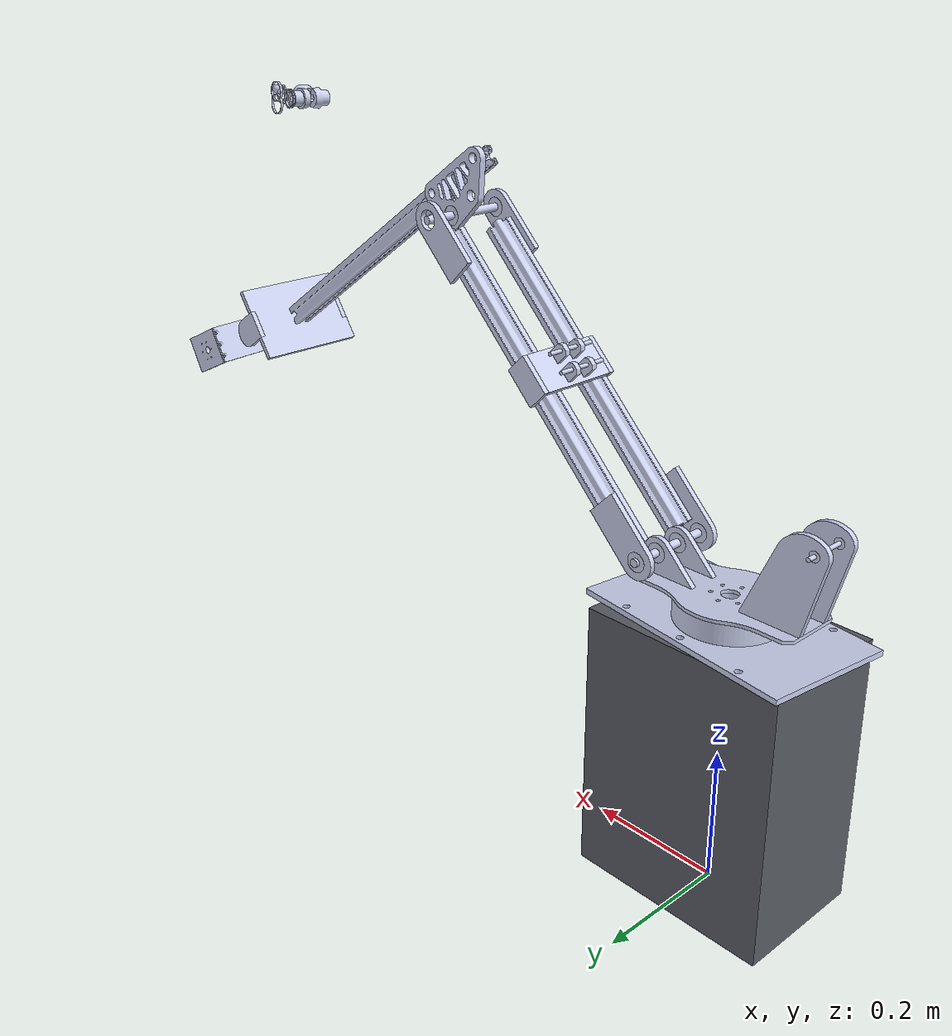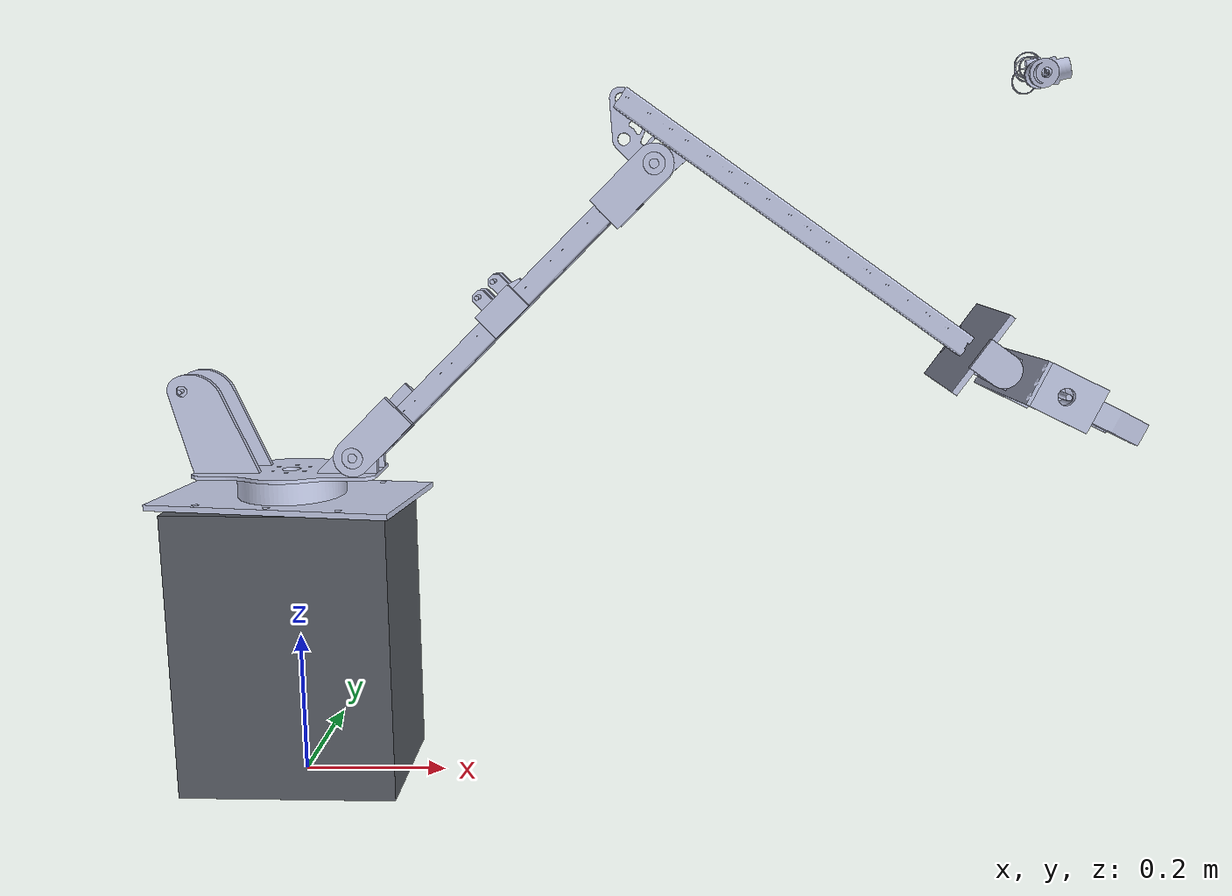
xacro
<?xml version="1.0"?>
<robot xmlns:xacro="http://www.ros.org/wiki/xacro" name="robot_arm">

  <xacro:arg name="sim" default="mock"/>
  <xacro:arg name="mount_height" default="0.4"/>
  <xacro:arg name="controllers_file" default="$(find robot_arm)/config/sim_controllers.yaml"/>
  <xacro:arg name="initial_base" default="0.0"/>
  <xacro:arg name="initial_shoulder" default="-0.24"/>
  <xacro:arg name="initial_elbow" default="2.29"/>

  <xacro:property name="sim" value="$(arg sim)"/>
  <xacro:property name="h" value="$(arg mount_height)"/>

  <xacro:include filename="$(find robot_arm)/description/urdf/robot_arm.urdf"/>

  <!-- World anchor and pedestal (stands in for the rover deck). The base plate (8 mm thick) sits on its top;
       base_link is the top face of the base plate, 8 mm above the pedestal top. -->
  <link name="world"/>
  <joint name="world_to_mount" type="fixed">
    <parent link="world"/>
    <child link="sim_mount"/>
    <origin xyz="0 0 ${h}" rpy="0 0 0"/>
  </joint>
  <link name="sim_mount">
    <inertial>
      <origin xyz="0 0 ${-h/2}" rpy="0 0 0"/>
      <mass value="5.0"/>
      <inertia ixx="0.1" ixy="0" ixz="0" iyy="0.1" iyz="0" izz="0.1"/>
    </inertial>
    <xacro:if value="${h > 0.001}">
      <visual>
        <origin xyz="0 0 ${-h/2}" rpy="0 0 0"/>
        <geometry><box size="0.30 0.20 ${h}"/></geometry>
        <material name="pedestal_grey"><color rgba="0.35 0.37 0.40 1"/></material>
      </visual>
      <collision>
        <origin xyz="0 0 ${-h/2}" rpy="0 0 0"/>
        <geometry><box size="0.30 0.20 ${h}"/></geometry>
      </collision>
    </xacro:if>
  </link>
  <joint name="mount_to_base" type="fixed">
    <parent link="sim_mount"/>
    <child link="base_link"/>
    <origin xyz="0 0 0.008" rpy="0 0 0"/>
  </joint>

  <!-- ros2_control: same joints and interfaces in every simulator -->
  <ros2_control name="RobotArmSim" type="system">
    <hardware>
      <xacro:if value="${sim == 'mock'}">
        <plugin>mock_components/GenericSystem</plugin>
      </xacro:if>
      <xacro:if value="${sim == 'gazebo'}">
        <plugin>gazebo_ros2_control/GazeboSystem</plugin>
      </xacro:if>
      <xacro:if value="${sim == 'ignition'}">
        <plugin>ign_ros2_control/IgnitionSystem</plugin>
      </xacro:if>
    </hardware>
    <joint name="base_joint">
      <command_interface name="position"/>
      <state_interface name="position">
        <param name="initial_value">$(arg initial_base)</param>
      </state_interface>
      <state_interface name="velocity"/>
    </joint>
    <joint name="shoulder_joint">
      <command_interface name="position"/>
      <state_interface name="position">
        <param name="initial_value">$(arg initial_shoulder)</param>
      </state_interface>
      <state_interface name="velocity"/>
    </joint>
    <joint name="elbow_joint">
      <command_interface name="position"/>
      <state_interface name="position">
        <param name="initial_value">$(arg initial_elbow)</param>
      </state_interface>
      <state_interface name="velocity"/>
    </joint>
  </ros2_control>

  <xacro:if value="${sim == 'gazebo'}">
    <gazebo>
      <plugin filename="libgazebo_ros2_control.so" name="gazebo_ros2_control">
        <parameters>$(arg controllers_file)</parameters>
      </plugin>
    </gazebo>
  </xacro:if>

  <xacro:if value="${sim == 'ignition'}">
    <gazebo>
      <plugin filename="libign_ros2_control-system.so" name="ign_ros2_control::IgnitionROS2ControlPlugin">
        <parameters>$(arg controllers_file)</parameters>
      </plugin>
    </gazebo>
  </xacro:if>

</robot>

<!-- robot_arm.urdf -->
<robot name="robot_arm">

  <!-- ===================== base (fixed to the rover) ===================== -->
  <link name="base_link"/>

  <joint name="base_link_to_base_plate" type="fixed">
    <parent link="base_link"/>
    <child link="robotic_arm_base_plate__boss_extrude2"/>
    <origin xyz="-0.00103225147681 -0.00187121695701 -0.0116560524401" rpy="-0.0116729648662 0.00889276675799 1.45303552018"/>
  </joint>

  <!-- Link robotic_arm_base_plate__boss_extrude2 -->
  <link name="robotic_arm_base_plate__boss_extrude2">
    <inertial>
      <origin xyz="0.00184915 -0.000976443 0.0146596" rpy="0 0 0"/>
      <mass value="1.89084"/>
      <inertia ixx="0.0145685" ixy="-5.86519e-05" ixz="-4.25492e-05" iyy="0.00525366" iyz="-0.000164209" izz="0.0192736"/>
    </inertial>
    <!-- Part thrust_bearing_d_enclosure__cirpattern1 -->
    <visual>
      <origin xyz="0.0018758 -0.000941463 0.011663" rpy="1.58253 -0.00881766 -0.00645199"/>
      <geometry>
        <mesh filename="package://robot_arm/description/meshes/thrust_bearing_d_enclosure__cirpattern1.stl"/>
      </geometry>
      <material name="thrust_bearing_d_enclosure__cirpattern1_material">
        <color rgba="0.792157 0.819608 0.933333 1"/>
      </material>
    </visual>
    <collision>
      <origin xyz="0.0018758 -0.000941463 0.011663" rpy="1.58253 -0.00881766 -0.00645199"/>
      <geometry>
        <mesh filename="package://robot_arm/description/meshes/thrust_bearing_d_enclosure__cirpattern1.stl"/>
      </geometry>
    </collision>
    <!-- Part robotic_arm_base_plate__boss_extrude2 -->
    <visual>
      <origin xyz="0.0018758 -0.000941463 0.011663" rpy="-1.55907 -0.00881766 -0.00645199"/>
      <geometry>
        <mesh filename="package://robot_arm/description/meshes/robotic_arm_base_plate__boss_extrude2.stl"/>
      </geometry>
      <material name="robotic_arm_base_plate__boss_extrude2_material">
        <color rgba="0.792157 0.819608 0.933333 1"/>
      </material>
    </visual>
    <collision>
      <origin xyz="0.0018758 -0.000941463 0.011663" rpy="-1.55907 -0.00881766 -0.00645199"/>
      <geometry>
        <mesh filename="package://robot_arm/description/meshes/robotic_arm_base_plate__boss_extrude2.stl"/>
      </geometry>
    </collision>
  </link>

  <!-- ===================== base yaw (export "360": revolute +/-180 deg -> continuous, slip ring) ===================== -->
  <joint name="base_joint" type="continuous">
    <parent link="base_link"/>
    <child link="base_yaw_link"/>
    <origin xyz="0 0 0" rpy="0 0 0"/>
    <axis xyz="0 0 1"/>
    <dynamics damping="0.0" friction="0.0"/>
    <limit effort="6.86" velocity="3.14"/>
  </joint>

  <link name="base_yaw_link"/>

  <joint name="base_yaw_to_turntable" type="fixed">
    <parent link="base_yaw_link"/>
    <child link="ra_3__boss_extrude1"/>
    <origin xyz="0 0 0.029500076063" rpy="3.14159265359 0 3.61739869449e-06"/>
  </joint>

  <!-- Link ra_3__boss_extrude1 -->
  <link name="ra_3__boss_extrude1">
    <inertial>
      <origin xyz="-0.0303207 -2.10884e-05 -0.035927" rpy="0 0 0"/>
      <mass value="0.987018"/>
      <inertia ixx="0.0023999" ixy="-2.17346e-06" ixz="-0.00174224" iyy="0.00885948" iyz="-1.69646e-06" izz="0.00821911"/>
    </inertial>
    <!-- Part ra_base_height_inc_actuator_part__boss_extrude5 -->
    <visual>
      <origin xyz="-0.125 -0.022 -0.005" rpy="-1.5708 -0 3.14159"/>
      <geometry>
        <mesh filename="package://robot_arm/description/meshes/ra_base_height_inc_actuator_part__boss_extrude5.stl"/>
      </geometry>
      <material name="ra_base_height_inc_actuator_part__boss_extrude5_material">
        <color rgba="0.792157 0.819608 0.933333 1"/>
      </material>
    </visual>
    <collision>
      <origin xyz="-0.125 -0.022 -0.005" rpy="-1.5708 -0 3.14159"/>
      <geometry>
        <mesh filename="package://robot_arm/description/meshes/ra_base_height_inc_actuator_part__boss_extrude5.stl"/>
      </geometry>
    </collision>
    <!-- Part id_6_od_15_th_5_bearing_619__boss_extrude1 -->
    <visual>
      <origin xyz="-0.134301 0.027 -0.116986" rpy="3.14159 1.5708 0"/>
      <geometry>
        <mesh filename="package://robot_arm/description/meshes/id_6_od_15_th_5_bearing_619__boss_extrude1.stl"/>
      </geometry>
      <material name="id_6_od_15_th_5_bearing_619__boss_extrude1_material">
        <color rgba="0.792157 0.819608 0.933333 1"/>
      </material>
    </visual>
    <collision>
      <origin xyz="-0.134301 0.027 -0.116986" rpy="3.14159 1.5708 0"/>
      <geometry>
        <mesh filename="package://robot_arm/description/meshes/id_6_od_15_th_5_bearing_619__boss_extrude1.stl"/>
      </geometry>
    </collision>
    <!-- Part m6_80mm_rod__boss_extrude1 -->
    <visual>
      <origin xyz="-0.134301 0.0376014 -0.116986" rpy="3.14159 1.5708 0"/>
      <geometry>
        <mesh filename="package://robot_arm/description/meshes/m6_80mm_rod__boss_extrude1.stl"/>
      </geometry>
      <material name="m6_80mm_rod__boss_extrude1_material">
        <color rgba="0.792157 0.819608 0.933333 1"/>
      </material>
    </visual>
    <collision>
      <origin xyz="-0.134301 0.0376014 -0.116986" rpy="3.14159 1.5708 0"/>
      <geometry>
        <mesh filename="package://robot_arm/description/meshes/m6_80mm_rod__boss_extrude1.stl"/>
      </geometry>
    </collision>
    <!-- Part ra_base_plate_laser_cut__boss_extrude1 -->
    <visual>
      <origin xyz="0.125 0.0175 -0.035" rpy="-1.5708 0 0"/>
      <geometry>
        <mesh filename="package://robot_arm/description/meshes/ra_base_plate_laser_cut__boss_extrude1.stl"/>
      </geometry>
      <material name="ra_base_plate_laser_cut__boss_extrude1_material">
        <color rgba="0.792157 0.819608 0.933333 1"/>
      </material>
    </visual>
    <collision>
      <origin xyz="0.125 0.0175 -0.035" rpy="-1.5708 0 0"/>
      <geometry>
        <mesh filename="package://robot_arm/description/meshes/ra_base_plate_laser_cut__boss_extrude1.stl"/>
      </geometry>
    </collision>
    <!-- Part bearing_12__boss_extrude1 -->
    <visual>
      <origin xyz="0.103176 -0.0255 -0.035" rpy="0 -0 -0"/>
      <geometry>
        <mesh filename="package://robot_arm/description/meshes/bearing_12__boss_extrude1.stl"/>
      </geometry>
      <material name="bearing_12__boss_extrude1_material">
        <color rgba="0.792157 0.819608 0.933333 1"/>
      </material>
    </visual>
    <collision>
      <origin xyz="0.103176 -0.0255 -0.035" rpy="0 -0 -0"/>
      <geometry>
        <mesh filename="package://robot_arm/description/meshes/bearing_12__boss_extrude1.stl"/>
      </geometry>
    </collision>
    <!-- Part ra_3__boss_extrude1 -->
    <visual>
      <origin xyz="0.103176 -0.07 -0.035" rpy="0 -0 -0"/>
      <geometry>
        <mesh filename="package://robot_arm/description/meshes/ra_3__boss_extrude1.stl"/>
      </geometry>
      <material name="ra_3__boss_extrude1_material">
        <color rgba="0.792157 0.819608 0.933333 1"/>
      </material>
    </visual>
    <collision>
      <origin xyz="0.103176 -0.07 -0.035" rpy="0 -0 -0"/>
      <geometry>
        <mesh filename="package://robot_arm/description/meshes/ra_3__boss_extrude1.stl"/>
      </geometry>
    </collision>
    <!-- Part ra_base_plate_laser_cut__boss_extrude1_2 -->
    <visual>
      <origin xyz="0.125 -0.0255 -0.035" rpy="-1.5708 -0 0"/>
      <geometry>
        <mesh filename="package://robot_arm/description/meshes/ra_base_plate_laser_cut__boss_extrude1.stl"/>
      </geometry>
      <material name="ra_base_plate_laser_cut__boss_extrude1_2_material">
        <color rgba="0.792157 0.819608 0.933333 1"/>
      </material>
    </visual>
    <collision>
      <origin xyz="0.125 -0.0255 -0.035" rpy="-1.5708 -0 0"/>
      <geometry>
        <mesh filename="package://robot_arm/description/meshes/ra_base_plate_laser_cut__boss_extrude1.stl"/>
      </geometry>
    </collision>
    <!-- Part bearing_12__boss_extrude1_2 -->
    <visual>
      <origin xyz="0.103 0.0255 -0.0351761" rpy="3.14159 1.5708 0"/>
      <geometry>
        <mesh filename="package://robot_arm/description/meshes/bearing_12__boss_extrude1.stl"/>
      </geometry>
      <material name="bearing_12__boss_extrude1_2_material">
        <color rgba="0.792157 0.819608 0.933333 1"/>
      </material>
    </visual>
    <collision>
      <origin xyz="0.103 0.0255 -0.0351761" rpy="3.14159 1.5708 0"/>
      <geometry>
        <mesh filename="package://robot_arm/description/meshes/bearing_12__boss_extrude1.stl"/>
      </geometry>
    </collision>
    <!-- Part id_6_od_15_th_5_bearing_619__boss_extrude1_2 -->
    <visual>
      <origin xyz="-0.134301 -0.025 -0.116986" rpy="3.14159 1.5708 0"/>
      <geometry>
        <mesh filename="package://robot_arm/description/meshes/id_6_od_15_th_5_bearing_619__boss_extrude1.stl"/>
      </geometry>
      <material name="id_6_od_15_th_5_bearing_619__boss_extrude1_2_material">
        <color rgba="0.792157 0.819608 0.933333 1"/>
      </material>
    </visual>
    <collision>
      <origin xyz="-0.134301 -0.025 -0.116986" rpy="3.14159 1.5708 0"/>
      <geometry>
        <mesh filename="package://robot_arm/description/meshes/id_6_od_15_th_5_bearing_619__boss_extrude1.stl"/>
      </geometry>
    </collision>
    <!-- Part ra_5__cirpattern1 -->
    <visual>
      <origin xyz="0 -0 0" rpy="-1.5708 0 -0"/>
      <geometry>
        <mesh filename="package://robot_arm/description/meshes/ra_5__cirpattern1.stl"/>
      </geometry>
      <material name="ra_5__cirpattern1_material">
        <color rgba="0.792157 0.819608 0.933333 1"/>
      </material>
    </visual>
    <collision>
      <origin xyz="0 -0 0" rpy="-1.5708 0 -0"/>
      <geometry>
        <mesh filename="package://robot_arm/description/meshes/ra_5__cirpattern1.stl"/>
      </geometry>
    </collision>
    <!-- Part ra_base_height_inc_actuator_part__boss_extrude5_2 -->
    <visual>
      <origin xyz="-0.125 0.03 -0.005" rpy="-1.5708 0 -3.14159"/>
      <geometry>
        <mesh filename="package://robot_arm/description/meshes/ra_base_height_inc_actuator_part__boss_extrude5.stl"/>
      </geometry>
      <material name="ra_base_height_inc_actuator_part__boss_extrude5_2_material">
        <color rgba="0.792157 0.819608 0.933333 1"/>
      </material>
    </visual>
    <collision>
      <origin xyz="-0.125 0.03 -0.005" rpy="-1.5708 0 -3.14159"/>
      <geometry>
        <mesh filename="package://robot_arm/description/meshes/ra_base_height_inc_actuator_part__boss_extrude5.stl"/>
      </geometry>
    </collision>
  </link>

  <!-- ===================== shoulder (export "l1End") ===================== -->
  <joint name="shoulder_joint" type="revolute">
    <parent link="base_yaw_link"/>
    <child link="upper_arm_link"/>
    <origin xyz="0.103176253217 0 0.064500076063" rpy="0 0 0"/>
    <axis xyz="0 -1 0"/>
    <limit lower="-1.419011" upper="-0.197281" effort="166.6" velocity="0.0420"/>
  </joint>

  <link name="upper_arm_link"/>

  <joint name="upper_arm_link_to_cad" type="fixed">
    <parent link="upper_arm_link"/>
    <child link="ra_4__boss_extrude1"/>
    <origin xyz="0 -0.0699996267708 0" rpy="-1.57076882367 -1.54805202665 3.14156503256"/>
  </joint>

  <!-- Link ra_4__boss_extrude1 -->
  <link name="ra_4__boss_extrude1">
    <inertial>
      <origin xyz="0.278901 -0.00564188 -0.0675572" rpy="0 0 0"/>
      <mass value="1.58078"/>
      <inertia ixx="0.00447972" ixy="0.000722581" ixz="-0.000189486" iyy="0.0500233" iyz="4.80005e-06" izz="0.0461324"/>
    </inertial>
    <!-- Part 3030_extrusion_robotic_arm_l1__boss_extrude1 -->
    <visual>
      <origin xyz="0.469824 -0.00999947 -0.0230005" rpy="-1.5708 -1.5708 0"/>
      <geometry>
        <mesh filename="package://robot_arm/description/meshes/3030_extrusion_robotic_arm_l1__boss_extrude1.stl"/>
      </geometry>
      <material name="3030_extrusion_robotic_arm_l1__boss_extrude1_material">
        <color rgba="0.792157 0.819608 0.933333 1"/>
      </material>
    </visual>
    <collision>
      <origin xyz="0.469824 -0.00999947 -0.0230005" rpy="-1.5708 -1.5708 0"/>
      <geometry>
        <mesh filename="package://robot_arm/description/meshes/3030_extrusion_robotic_arm_l1__boss_extrude1.stl"/>
      </geometry>
    </collision>
    <!-- Part c_clamp_plate_actuator_mounting__boss_extrude1 -->
    <visual>
      <origin xyz="0.279824 -0.00599892 -0.128" rpy="-3.14159 -0 3.14159"/>
      <geometry>
        <mesh filename="package://robot_arm/description/meshes/c_clamp_plate_actuator_mounting__boss_extrude1.stl"/>
      </geometry>
      <material name="c_clamp_plate_actuator_mounting__boss_extrude1_material">
        <color rgba="0.792157 0.819608 0.933333 1"/>
      </material>
    </visual>
    <collision>
      <origin xyz="0.279824 -0.00599892 -0.128" rpy="-3.14159 -0 3.14159"/>
      <geometry>
        <mesh filename="package://robot_arm/description/meshes/c_clamp_plate_actuator_mounting__boss_extrude1.stl"/>
      </geometry>
    </collision>
    <!-- Part knuckle_actuator_part_mounting__chamfer1 -->
    <visual>
      <origin xyz="0.264824 0.0255011 -0.0570005" rpy="0 0 0"/>
      <geometry>
        <mesh filename="package://robot_arm/description/meshes/knuckle_actuator_part_mounting__chamfer1.stl"/>
      </geometry>
      <material name="knuckle_actuator_part_mounting__chamfer1_material">
        <color rgba="0.792157 0.819608 0.933333 1"/>
      </material>
    </visual>
    <collision>
      <origin xyz="0.264824 0.0255011 -0.0570005" rpy="0 0 0"/>
      <geometry>
        <mesh filename="package://robot_arm/description/meshes/knuckle_actuator_part_mounting__chamfer1.stl"/>
      </geometry>
    </collision>
    <!-- Part ra_1__cut_extrude1 -->
    <visual>
      <origin xyz="0.0448239 0.01 -0.136" rpy="0 -0 1.5708"/>
      <geometry>
        <mesh filename="package://robot_arm/description/meshes/ra_1__cut_extrude1.stl"/>
      </geometry>
      <material name="ra_1__cut_extrude1_material">
        <color rgba="0.792157 0.819608 0.933333 1"/>
      </material>
    </visual>
    <collision>
      <origin xyz="0.0448239 0.01 -0.136" rpy="0 -0 1.5708"/>
      <geometry>
        <mesh filename="package://robot_arm/description/meshes/ra_1__cut_extrude1.stl"/>
      </geometry>
    </collision>
    <!-- Part ra_1__cut_extrude1_2 -->
    <visual>
      <origin xyz="0.0448239 0.01 -0.008" rpy="0 0 1.5708"/>
      <geometry>
        <mesh filename="package://robot_arm/description/meshes/ra_1__cut_extrude1.stl"/>
      </geometry>
      <material name="ra_1__cut_extrude1_2_material">
        <color rgba="0.792157 0.819608 0.933333 1"/>
      </material>
    </visual>
    <collision>
      <origin xyz="0.0448239 0.01 -0.008" rpy="0 0 1.5708"/>
      <geometry>
        <mesh filename="package://robot_arm/description/meshes/ra_1__cut_extrude1.stl"/>
      </geometry>
    </collision>
    <!-- Part ra_4__boss_extrude1 -->
    <visual>
      <origin xyz="0.279824 0.00500108 -0.068" rpy="-1.5708 -1.5708 0"/>
      <geometry>
        <mesh filename="package://robot_arm/description/meshes/ra_4__boss_extrude1.stl"/>
      </geometry>
      <material name="ra_4__boss_extrude1_material">
        <color rgba="0.792157 0.819608 0.933333 1"/>
      </material>
    </visual>
    <collision>
      <origin xyz="0.279824 0.00500108 -0.068" rpy="-1.5708 -1.5708 0"/>
      <geometry>
        <mesh filename="package://robot_arm/description/meshes/ra_4__boss_extrude1.stl"/>
      </geometry>
    </collision>
    <!-- Part knuckle_actuator_part_mounting__chamfer1_2 -->
    <visual>
      <origin xyz="0.294824 0.0255011 -0.0869995" rpy="0 0 -0"/>
      <geometry>
        <mesh filename="package://robot_arm/description/meshes/knuckle_actuator_part_mounting__chamfer1.stl"/>
      </geometry>
      <material name="knuckle_actuator_part_mounting__chamfer1_2_material">
        <color rgba="0.792157 0.819608 0.933333 1"/>
      </material>
    </visual>
    <collision>
      <origin xyz="0.294824 0.0255011 -0.0869995" rpy="0 0 -0"/>
      <geometry>
        <mesh filename="package://robot_arm/description/meshes/knuckle_actuator_part_mounting__chamfer1.stl"/>
      </geometry>
    </collision>
    <!-- Part 3030_extrusion_robotic_arm_l1__boss_extrude1_2 -->
    <visual>
      <origin xyz="0.469824 -0.00999947 -0.112999" rpy="-1.5708 -1.5708 0"/>
      <geometry>
        <mesh filename="package://robot_arm/description/meshes/3030_extrusion_robotic_arm_l1__boss_extrude1.stl"/>
      </geometry>
      <material name="3030_extrusion_robotic_arm_l1__boss_extrude1_2_material">
        <color rgba="0.792157 0.819608 0.933333 1"/>
      </material>
    </visual>
    <collision>
      <origin xyz="0.469824 -0.00999947 -0.112999" rpy="-1.5708 -1.5708 0"/>
      <geometry>
        <mesh filename="package://robot_arm/description/meshes/3030_extrusion_robotic_arm_l1__boss_extrude1.stl"/>
      </geometry>
    </collision>
    <!-- Part ra_1__cut_extrude1_3 -->
    <visual>
      <origin xyz="0.504648 -0.0224995 -0.136" rpy="-0 0 -1.5708"/>
      <geometry>
        <mesh filename="package://robot_arm/description/meshes/ra_1__cut_extrude1.stl"/>
      </geometry>
      <material name="ra_1__cut_extrude1_3_material">
        <color rgba="0.792157 0.819608 0.933333 1"/>
      </material>
    </visual>
    <collision>
      <origin xyz="0.504648 -0.0224995 -0.136" rpy="-0 0 -1.5708"/>
      <geometry>
        <mesh filename="package://robot_arm/description/meshes/ra_1__cut_extrude1.stl"/>
      </geometry>
    </collision>
    <!-- Part c_clamp_plate_actuator_mounting__boss_extrude1_2 -->
    <visual>
      <origin xyz="0.279824 -0.00599892 9.4e-09" rpy="3.14159 -0 0"/>
      <geometry>
        <mesh filename="package://robot_arm/description/meshes/c_clamp_plate_actuator_mounting__boss_extrude1.stl"/>
      </geometry>
      <material name="c_clamp_plate_actuator_mounting__boss_extrude1_2_material">
        <color rgba="0.792157 0.819608 0.933333 1"/>
      </material>
    </visual>
    <collision>
      <origin xyz="0.279824 -0.00599892 9.4e-09" rpy="3.14159 -0 0"/>
      <geometry>
        <mesh filename="package://robot_arm/description/meshes/c_clamp_plate_actuator_mounting__boss_extrude1.stl"/>
      </geometry>
    </collision>
    <!-- Part bearing_12__boss_extrude1_3 -->
    <visual>
      <origin xyz="0 0 -0.008" rpy="1.5708 -0 -0"/>
      <geometry>
        <mesh filename="package://robot_arm/description/meshes/bearing_12__boss_extrude1.stl"/>
      </geometry>
      <material name="bearing_12__boss_extrude1_3_material">
        <color rgba="0.792157 0.819608 0.933333 1"/>
      </material>
    </visual>
    <collision>
      <origin xyz="0 0 -0.008" rpy="1.5708 -0 -0"/>
      <geometry>
        <mesh filename="package://robot_arm/description/meshes/bearing_12__boss_extrude1.stl"/>
      </geometry>
    </collision>
    <!-- Part m6_80mm_rod__boss_extrude1_2 -->
    <visual>
      <origin xyz="0.294824 0.0305011 -0.0279995" rpy="-1.5708 0 -0"/>
      <geometry>
        <mesh filename="package://robot_arm/description/meshes/m6_80mm_rod__boss_extrude1.stl"/>
      </geometry>
      <material name="m6_80mm_rod__boss_extrude1_2_material">
        <color rgba="0.792157 0.819608 0.933333 1"/>
      </material>
    </visual>
    <collision>
      <origin xyz="0.294824 0.0305011 -0.0279995" rpy="-1.5708 0 -0"/>
      <geometry>
        <mesh filename="package://robot_arm/description/meshes/m6_80mm_rod__boss_extrude1.stl"/>
      </geometry>
    </collision>
    <!-- Part knuckle_actuator_part_mounting__chamfer1_3 -->
    <visual>
      <origin xyz="0.294824 0.0255011 -0.0570005" rpy="0 0 -0"/>
      <geometry>
        <mesh filename="package://robot_arm/description/meshes/knuckle_actuator_part_mounting__chamfer1.stl"/>
      </geometry>
      <material name="knuckle_actuator_part_mounting__chamfer1_3_material">
        <color rgba="0.792157 0.819608 0.933333 1"/>
      </material>
    </visual>
    <collision>
      <origin xyz="0.294824 0.0255011 -0.0570005" rpy="0 0 -0"/>
      <geometry>
        <mesh filename="package://robot_arm/description/meshes/knuckle_actuator_part_mounting__chamfer1.stl"/>
      </geometry>
    </collision>
    <!-- Part knuckle_actuator_part_mounting__chamfer1_4 -->
    <visual>
      <origin xyz="0.264824 0.0255011 -0.0869995" rpy="0 0 -0"/>
      <geometry>
        <mesh filename="package://robot_arm/description/meshes/knuckle_actuator_part_mounting__chamfer1.stl"/>
      </geometry>
      <material name="knuckle_actuator_part_mounting__chamfer1_4_material">
        <color rgba="0.792157 0.819608 0.933333 1"/>
      </material>
    </visual>
    <collision>
      <origin xyz="0.264824 0.0255011 -0.0869995" rpy="0 0 -0"/>
      <geometry>
        <mesh filename="package://robot_arm/description/meshes/knuckle_actuator_part_mounting__chamfer1.stl"/>
      </geometry>
    </collision>
    <!-- Part m6_80mm_rod__boss_extrude1_3 -->
    <visual>
      <origin xyz="0.264824 0.0305011 -0.0279995" rpy="-1.5708 -0 -0"/>
      <geometry>
        <mesh filename="package://robot_arm/description/meshes/m6_80mm_rod__boss_extrude1.stl"/>
      </geometry>
      <material name="m6_80mm_rod__boss_extrude1_3_material">
        <color rgba="0.792157 0.819608 0.933333 1"/>
      </material>
    </visual>
    <collision>
      <origin xyz="0.264824 0.0305011 -0.0279995" rpy="-1.5708 -0 -0"/>
      <geometry>
        <mesh filename="package://robot_arm/description/meshes/m6_80mm_rod__boss_extrude1.stl"/>
      </geometry>
    </collision>
    <!-- Part bearing_12__boss_extrude1_4 -->
    <visual>
      <origin xyz="-0.000352225 0 -0.136" rpy="1.5708 -0 3.14159"/>
      <geometry>
        <mesh filename="package://robot_arm/description/meshes/bearing_12__boss_extrude1.stl"/>
      </geometry>
      <material name="bearing_12__boss_extrude1_4_material">
        <color rgba="0.792157 0.819608 0.933333 1"/>
      </material>
    </visual>
    <collision>
      <origin xyz="-0.000352225 0 -0.136" rpy="1.5708 -0 3.14159"/>
      <geometry>
        <mesh filename="package://robot_arm/description/meshes/bearing_12__boss_extrude1.stl"/>
      </geometry>
    </collision>
    <!-- Part ra_3__boss_extrude1_2 -->
    <visual>
      <origin xyz="0.549472 -0.0124995 0.00199893" rpy="-1.5708 -0 1.5708"/>
      <geometry>
        <mesh filename="package://robot_arm/description/meshes/ra_3__boss_extrude1.stl"/>
      </geometry>
      <material name="ra_3__boss_extrude1_2_material">
        <color rgba="0.792157 0.819608 0.933333 1"/>
      </material>
    </visual>
    <collision>
      <origin xyz="0.549472 -0.0124995 0.00199893" rpy="-1.5708 -0 1.5708"/>
      <geometry>
        <mesh filename="package://robot_arm/description/meshes/ra_3__boss_extrude1.stl"/>
      </geometry>
    </collision>
    <!-- Part bearing_12__boss_extrude1_5 -->
    <visual>
      <origin xyz="0.549472 -0.0124995 -0.008" rpy="1.5708 -0 -3.14159"/>
      <geometry>
        <mesh filename="package://robot_arm/description/meshes/bearing_12__boss_extrude1.stl"/>
      </geometry>
      <material name="bearing_12__boss_extrude1_5_material">
        <color rgba="0.792157 0.819608 0.933333 1"/>
      </material>
    </visual>
    <collision>
      <origin xyz="0.549472 -0.0124995 -0.008" rpy="1.5708 -0 -3.14159"/>
      <geometry>
        <mesh filename="package://robot_arm/description/meshes/bearing_12__boss_extrude1.stl"/>
      </geometry>
    </collision>
    <!-- Part ra_1__cut_extrude1_4 -->
    <visual>
      <origin xyz="0.504648 -0.0224995 -0.008" rpy="-0 0 -1.5708"/>
      <geometry>
        <mesh filename="package://robot_arm/description/meshes/ra_1__cut_extrude1.stl"/>
      </geometry>
      <material name="ra_1__cut_extrude1_4_material">
        <color rgba="0.792157 0.819608 0.933333 1"/>
      </material>
    </visual>
    <collision>
      <origin xyz="0.504648 -0.0224995 -0.008" rpy="-0 0 -1.5708"/>
      <geometry>
        <mesh filename="package://robot_arm/description/meshes/ra_1__cut_extrude1.stl"/>
      </geometry>
    </collision>
  </link>

  <!-- ===================== elbow (export "L2") ===================== -->
  <joint name="elbow_joint" type="revolute">
    <parent link="upper_arm_link"/>
    <child link="forearm_link"/>
    <origin xyz="0 0 0.549614094642" rpy="0 0 0"/>
    <axis xyz="0 1 0"/>
    <limit lower="0.231847" upper="2.328057" effort="197.4" velocity="0.0355"/>
  </joint>

  <link name="forearm_link"/>

  <joint name="forearm_link_to_cad" type="fixed">
    <parent link="forearm_link"/>
    <child link="gripper__1"/>
    <origin xyz="0 0.0220018170047 0" rpy="-1.57078803357 -1.47836752891 -5.98423428561e-06"/>
  </joint>

  <!-- Link gripper__1 -->
  <link name="gripper__1">
    <inertial>
      <origin xyz="0.45374 -0.0659326 -0.0340334" rpy="0 0 0"/>
      <mass value="2.52775"/>
      <inertia ixx="0.0237637" ixy="0.00028306" ixz="0.0042694" iyy="0.124298" iyz="-0.00337704" izz="0.125507"/>
    </inertial>
    <!-- Part part1__cut_extrude2 -->
    <visual>
      <origin xyz="-0.0572971 0.00600598 0.000999998" rpy="-3.14159 -0 -0"/>
      <geometry>
        <mesh filename="package://robot_arm/description/meshes/part1__cut_extrude2.stl"/>
      </geometry>
      <material name="part1__cut_extrude2_material">
        <color rgba="0.792157 0.819608 0.933333 1"/>
      </material>
    </visual>
    <collision>
      <origin xyz="-0.0572971 0.00600598 0.000999998" rpy="-3.14159 -0 -0"/>
      <geometry>
        <mesh filename="package://robot_arm/description/meshes/part1__cut_extrude2.stl"/>
      </geometry>
    </collision>
    <!-- Part 3030_extrusion_robotic_arm_l2__boss_extrude1 -->
    <visual>
      <origin xyz="-0.0353855 -0.0439935 -0.0240005" rpy="-1.5708 1.5708 0"/>
      <geometry>
        <mesh filename="package://robot_arm/description/meshes/3030_extrusion_robotic_arm_l2__boss_extrude1.stl"/>
      </geometry>
      <material name="3030_extrusion_robotic_arm_l2__boss_extrude1_material">
        <color rgba="0.792157 0.819608 0.933333 1"/>
      </material>
    </visual>
    <collision>
      <origin xyz="-0.0353855 -0.0439935 -0.0240005" rpy="-1.5708 1.5708 0"/>
      <geometry>
        <mesh filename="package://robot_arm/description/meshes/3030_extrusion_robotic_arm_l2__boss_extrude1.stl"/>
      </geometry>
    </collision>
    <!-- Part bearing_12__boss_extrude1_6 -->
    <visual>
      <origin xyz="-0 0 -0.008" rpy="1.5708 -0 -0"/>
      <geometry>
        <mesh filename="package://robot_arm/description/meshes/bearing_12__boss_extrude1.stl"/>
      </geometry>
      <material name="bearing_12__boss_extrude1_6_material">
        <color rgba="0.792157 0.819608 0.933333 1"/>
      </material>
    </visual>
    <collision>
      <origin xyz="-0 0 -0.008" rpy="1.5708 -0 -0"/>
      <geometry>
        <mesh filename="package://robot_arm/description/meshes/bearing_12__boss_extrude1.stl"/>
      </geometry>
    </collision>
    <!-- Part id_25_od_32_61705__2_1 -->
    <visual>
      <origin xyz="0.327464 -0.359806 -0.0691875" rpy="-2.2687 1.44668 2.09462"/>
      <geometry>
        <mesh filename="package://robot_arm/description/meshes/id_25_od_32_61705__2_1.stl"/>
      </geometry>
      <material name="id_25_od_32_61705__2_1_material">
        <color rgba="0.792157 0.819608 0.933333 1"/>
      </material>
    </visual>
    <collision>
      <origin xyz="0.327464 -0.359806 -0.0691875" rpy="-2.2687 1.44668 2.09462"/>
      <geometry>
        <mesh filename="package://robot_arm/description/meshes/id_25_od_32_61705__2_1.stl"/>
      </geometry>
    </collision>
    <!-- Part grip_of_gripper__boss_extrude2 -->
    <visual>
      <origin xyz="0.704514 -0.0941218 -0.106488" rpy="-3.14159 -1.53195 1.40726"/>
      <geometry>
        <mesh filename="package://robot_arm/description/meshes/grip_of_gripper__boss_extrude2.stl"/>
      </geometry>
      <material name="grip_of_gripper__boss_extrude2_material">
        <color rgba="0.792157 0.819608 0.933333 1"/>
      </material>
    </visual>
    <collision>
      <origin xyz="0.704514 -0.0941218 -0.106488" rpy="-3.14159 -1.53195 1.40726"/>
      <geometry>
        <mesh filename="package://robot_arm/description/meshes/grip_of_gripper__boss_extrude2.stl"/>
      </geometry>
    </collision>
    <!-- Part ra_gripper_beval__revolve1_1 -->
    <visual>
      <origin xyz="0.31587 -0.345714 -0.105236" rpy="-1.79043 1.44668 2.09462"/>
      <geometry>
        <mesh filename="package://robot_arm/description/meshes/ra_gripper_beval__revolve1_1.stl"/>
      </geometry>
      <material name="ra_gripper_beval__revolve1_1_material">
        <color rgba="0.792157 0.819608 0.933333 1"/>
      </material>
    </visual>
    <collision>
      <origin xyz="0.31587 -0.345714 -0.105236" rpy="-1.79043 1.44668 2.09462"/>
      <geometry>
        <mesh filename="package://robot_arm/description/meshes/ra_gripper_beval__revolve1_1.stl"/>
      </geometry>
    </collision>
    <!-- Part ms_rod_7_mm__boss_extrude1 -->
    <visual>
      <origin xyz="0.312955 -0.366302 -0.0489174" rpy="-1.79043 1.44668 2.09462"/>
      <geometry>
        <mesh filename="package://robot_arm/description/meshes/ms_rod_7_mm__boss_extrude1.stl"/>
      </geometry>
      <material name="ms_rod_7_mm__boss_extrude1_material">
        <color rgba="0.792157 0.819608 0.933333 1"/>
      </material>
    </visual>
    <collision>
      <origin xyz="0.312955 -0.366302 -0.0489174" rpy="-1.79043 1.44668 2.09462"/>
      <geometry>
        <mesh filename="package://robot_arm/description/meshes/ms_rod_7_mm__boss_extrude1.stl"/>
      </geometry>
    </collision>
    <!-- Part ra_gripper_beval__revolve1_1_2 -->
    <visual>
      <origin xyz="0.324261 -0.354261 -0.12052" rpy="1.44963 0.0269747 -2.39977"/>
      <geometry>
        <mesh filename="package://robot_arm/description/meshes/ra_gripper_beval__revolve1_1.stl"/>
      </geometry>
      <material name="ra_gripper_beval__revolve1_1_2_material">
        <color rgba="0.792157 0.819608 0.933333 1"/>
      </material>
    </visual>
    <collision>
      <origin xyz="0.324261 -0.354261 -0.12052" rpy="1.44963 0.0269747 -2.39977"/>
      <geometry>
        <mesh filename="package://robot_arm/description/meshes/ra_gripper_beval__revolve1_1.stl"/>
      </geometry>
    </collision>
    <!-- Part ra_gripper_beval__revolve1_1_3 -->
    <visual>
      <origin xyz="0.325961 -0.357204 -0.0932705" rpy="-1.59797 -0.121117 2.3159"/>
      <geometry>
        <mesh filename="package://robot_arm/description/meshes/ra_gripper_beval__revolve1_1.stl"/>
      </geometry>
      <material name="ra_gripper_beval__revolve1_1_3_material">
        <color rgba="0.792157 0.819608 0.933333 1"/>
      </material>
    </visual>
    <collision>
      <origin xyz="0.325961 -0.357204 -0.0932705" rpy="-1.59797 -0.121117 2.3159"/>
      <geometry>
        <mesh filename="package://robot_arm/description/meshes/ra_gripper_beval__revolve1_1.stl"/>
      </geometry>
    </collision>
    <!-- Part id_25_od_32_61705__3_1 -->
    <visual>
      <origin xyz="0.316798 -0.36253 -0.0513516" rpy="-1.89688 1.44668 2.09462"/>
      <geometry>
        <mesh filename="package://robot_arm/description/meshes/id_25_od_32_61705__3_1.stl"/>
      </geometry>
      <material name="id_25_od_32_61705__3_1_material">
        <color rgba="0.792157 0.819608 0.933333 1"/>
      </material>
    </visual>
    <collision>
      <origin xyz="0.316798 -0.36253 -0.0513516" rpy="-1.89688 1.44668 2.09462"/>
      <geometry>
        <mesh filename="package://robot_arm/description/meshes/id_25_od_32_61705__3_1.stl"/>
      </geometry>
    </collision>
    <!-- Part lovejoy_coupling__boss_extrude1 -->
    <visual>
      <origin xyz="0.584887 -0.0513133 0.0929112" rpy="-1.53195 -0 2.97806"/>
      <geometry>
        <mesh filename="package://robot_arm/description/meshes/lovejoy_coupling__boss_extrude1.stl"/>
      </geometry>
      <material name="lovejoy_coupling__boss_extrude1_material">
        <color rgba="0.792157 0.819608 0.933333 1"/>
      </material>
    </visual>
    <collision>
      <origin xyz="0.584887 -0.0513133 0.0929112" rpy="-1.53195 -0 2.97806"/>
      <geometry>
        <mesh filename="package://robot_arm/description/meshes/lovejoy_coupling__boss_extrude1.stl"/>
      </geometry>
    </collision>
    <!-- Part ms_plate_5mm__csk_for_m5_countersunk_flat_head_screw1 -->
    <visual>
      <origin xyz="0.549121 -0.0500173 -0.0240005" rpy="3.14159 1.53195 -1.73433"/>
      <geometry>
        <mesh filename="package://robot_arm/description/meshes/ms_plate_5mm__csk_for_m5_countersunk_flat_head_screw1.stl"/>
      </geometry>
      <material name="ms_plate_5mm__csk_for_m5_countersunk_flat_head_screw1_material">
        <color rgba="0.792157 0.819608 0.933333 1"/>
      </material>
    </visual>
    <collision>
      <origin xyz="0.549121 -0.0500173 -0.0240005" rpy="3.14159 1.53195 -1.73433"/>
      <geometry>
        <mesh filename="package://robot_arm/description/meshes/ms_plate_5mm__csk_for_m5_countersunk_flat_head_screw1.stl"/>
      </geometry>
    </collision>
    <!-- Part id_25_od_32_61705__1_1 -->
    <visual>
      <origin xyz="0.325155 -0.352247 -0.0391389" rpy="-2.2687 1.44668 2.09462"/>
      <geometry>
        <mesh filename="package://robot_arm/description/meshes/id_25_od_32_61705__1_1.stl"/>
      </geometry>
      <material name="id_25_od_32_61705__1_1_material">
        <color rgba="0.792157 0.819608 0.933333 1"/>
      </material>
    </visual>
    <collision>
      <origin xyz="0.325155 -0.352247 -0.0391389" rpy="-2.2687 1.44668 2.09462"/>
      <geometry>
        <mesh filename="package://robot_arm/description/meshes/id_25_od_32_61705__1_1.stl"/>
      </geometry>
    </collision>
    <!-- Part main_part__cut_extrude1 -->
    <visual>
      <origin xyz="0.512615 -0.0439935 -0.00150054" rpy="1.5708 0 1.40726"/>
      <geometry>
        <mesh filename="package://robot_arm/description/meshes/main_part__cut_extrude1.stl"/>
      </geometry>
      <material name="main_part__cut_extrude1_material">
        <color rgba="0.792157 0.819608 0.933333 1"/>
      </material>
    </visual>
    <collision>
      <origin xyz="0.512615 -0.0439935 -0.00150054" rpy="1.5708 0 1.40726"/>
      <geometry>
        <mesh filename="package://robot_arm/description/meshes/main_part__cut_extrude1.stl"/>
      </geometry>
    </collision>
    <!-- Part id_25_od_32_61705__1_1_2 -->
    <visual>
      <origin xyz="0.315414 -0.369064 -0.0409735" rpy="-1.89688 1.44668 2.09462"/>
      <geometry>
        <mesh filename="package://robot_arm/description/meshes/id_25_od_32_61705__1_1.stl"/>
      </geometry>
      <material name="id_25_od_32_61705__1_1_2_material">
        <color rgba="0.792157 0.819608 0.933333 1"/>
      </material>
    </visual>
    <collision>
      <origin xyz="0.315414 -0.369064 -0.0409735" rpy="-1.89688 1.44668 2.09462"/>
      <geometry>
        <mesh filename="package://robot_arm/description/meshes/id_25_od_32_61705__1_1.stl"/>
      </geometry>
    </collision>
    <!-- Part bevel_rotating__cut_extrude1 -->
    <visual>
      <origin xyz="0.539254 -0.0483892 -0.0240005" rpy="-3.14159 0 1.40726"/>
      <geometry>
        <mesh filename="package://robot_arm/description/meshes/bevel_rotating__cut_extrude1.stl"/>
      </geometry>
      <material name="bevel_rotating__cut_extrude1_material">
        <color rgba="0.792157 0.819608 0.933333 1"/>
      </material>
    </visual>
    <collision>
      <origin xyz="0.539254 -0.0483892 -0.0240005" rpy="-3.14159 0 1.40726"/>
      <geometry>
        <mesh filename="package://robot_arm/description/meshes/bevel_rotating__cut_extrude1.stl"/>
      </geometry>
    </collision>
    <!-- Part id_25_od_32_61705__2_1_2 -->
    <visual>
      <origin xyz="0.318362 -0.366449 -0.0510209" rpy="-1.89688 1.44668 2.09462"/>
      <geometry>
        <mesh filename="package://robot_arm/description/meshes/id_25_od_32_61705__2_1.stl"/>
      </geometry>
      <material name="id_25_od_32_61705__2_1_2_material">
        <color rgba="0.792157 0.819608 0.933333 1"/>
      </material>
    </visual>
    <collision>
      <origin xyz="0.318362 -0.366449 -0.0510209" rpy="-1.89688 1.44668 2.09462"/>
      <geometry>
        <mesh filename="package://robot_arm/description/meshes/id_25_od_32_61705__2_1.stl"/>
      </geometry>
    </collision>
    <!-- Part side_plate_gripper_bearing_housing__boss_extrude2 -->
    <visual>
      <origin xyz="0.587847 -0.061013 -0.140912" rpy="-3.14159 0.0388487 1.40726"/>
      <geometry>
        <mesh filename="package://robot_arm/description/meshes/side_plate_gripper_bearing_housing__boss_extrude2.stl"/>
      </geometry>
      <material name="side_plate_gripper_bearing_housing__boss_extrude2_material">
        <color rgba="0.792157 0.819608 0.933333 1"/>
      </material>
    </visual>
    <collision>
      <origin xyz="0.587847 -0.061013 -0.140912" rpy="-3.14159 0.0388487 1.40726"/>
      <geometry>
        <mesh filename="package://robot_arm/description/meshes/side_plate_gripper_bearing_housing__boss_extrude2.stl"/>
      </geometry>
    </collision>
    <!-- Part main_part__cut_extrude1_2 -->
    <visual>
      <origin xyz="0.512615 -0.0439935 -0.0515005" rpy="1.5708 0 1.40726"/>
      <geometry>
        <mesh filename="package://robot_arm/description/meshes/main_part__cut_extrude1.stl"/>
      </geometry>
      <material name="main_part__cut_extrude1_2_material">
        <color rgba="0.792157 0.819608 0.933333 1"/>
      </material>
    </visual>
    <collision>
      <origin xyz="0.512615 -0.0439935 -0.0515005" rpy="1.5708 0 1.40726"/>
      <geometry>
        <mesh filename="package://robot_arm/description/meshes/main_part__cut_extrude1.stl"/>
      </geometry>
    </collision>
    <!-- Part id_25_od_32_61705__3_1_2 -->
    <visual>
      <origin xyz="0.327464 -0.359806 -0.0691875" rpy="-2.2687 1.44668 2.09462"/>
      <geometry>
        <mesh filename="package://robot_arm/description/meshes/id_25_od_32_61705__3_1.stl"/>
      </geometry>
      <material name="id_25_od_32_61705__3_1_2_material">
        <color rgba="0.792157 0.819608 0.933333 1"/>
      </material>
    </visual>
    <collision>
      <origin xyz="0.327464 -0.359806 -0.0691875" rpy="-2.2687 1.44668 2.09462"/>
      <geometry>
        <mesh filename="package://robot_arm/description/meshes/id_25_od_32_61705__3_1.stl"/>
      </geometry>
    </collision>
    <!-- Part base_plate__cut_extrude1 -->
    <visual>
      <origin xyz="0.474615 -0.0439935 -0.0240005" rpy="1.5708 1.5708 0"/>
      <geometry>
        <mesh filename="package://robot_arm/description/meshes/base_plate__cut_extrude1.stl"/>
      </geometry>
      <material name="base_plate__cut_extrude1_material">
        <color rgba="0.792157 0.819608 0.933333 1"/>
      </material>
    </visual>
    <collision>
      <origin xyz="0.474615 -0.0439935 -0.0240005" rpy="1.5708 1.5708 0"/>
      <geometry>
        <mesh filename="package://robot_arm/description/meshes/base_plate__cut_extrude1.stl"/>
      </geometry>
    </collision>
    <!-- Part side_motor_mounting__boss_extrude1 -->
    <visual>
      <origin xyz="0.512615 -0.0439935 0.0634995" rpy="3.14159 -0 1.5708"/>
      <geometry>
        <mesh filename="package://robot_arm/description/meshes/side_motor_mounting__boss_extrude1.stl"/>
      </geometry>
      <material name="side_motor_mounting__boss_extrude1_material">
        <color rgba="0.792157 0.819608 0.933333 1"/>
      </material>
    </visual>
    <collision>
      <origin xyz="0.512615 -0.0439935 0.0634995" rpy="3.14159 -0 1.5708"/>
      <geometry>
        <mesh filename="package://robot_arm/description/meshes/side_motor_mounting__boss_extrude1.stl"/>
      </geometry>
    </collision>
    <!-- Part side_motor_mounting__boss_extrude1_2 -->
    <visual>
      <origin xyz="0.512615 -0.0439935 -0.111501" rpy="-0 -0 -1.5708"/>
      <geometry>
        <mesh filename="package://robot_arm/description/meshes/side_motor_mounting__boss_extrude1.stl"/>
      </geometry>
      <material name="side_motor_mounting__boss_extrude1_2_material">
        <color rgba="0.792157 0.819608 0.933333 1"/>
      </material>
    </visual>
    <collision>
      <origin xyz="0.512615 -0.0439935 -0.111501" rpy="-0 -0 -1.5708"/>
      <geometry>
        <mesh filename="package://robot_arm/description/meshes/side_motor_mounting__boss_extrude1.stl"/>
      </geometry>
    </collision>
    <!-- Part id_25_od_32_61705__5_1 -->
    <visual>
      <origin xyz="0.327464 -0.359806 -0.0691875" rpy="-2.2687 1.44668 2.09462"/>
      <geometry>
        <mesh filename="package://robot_arm/description/meshes/id_25_od_32_61705__5_1.stl"/>
      </geometry>
      <material name="id_25_od_32_61705__5_1_material">
        <color rgba="0.792157 0.819608 0.933333 1"/>
      </material>
    </visual>
    <collision>
      <origin xyz="0.327464 -0.359806 -0.0691875" rpy="-2.2687 1.44668 2.09462"/>
      <geometry>
        <mesh filename="package://robot_arm/description/meshes/id_25_od_32_61705__5_1.stl"/>
      </geometry>
    </collision>
    <!-- Part 120mm_lead_screw__boss_extrude1 -->
    <visual>
      <origin xyz="0.583306 -0.0608935 -0.1569" rpy="1.5708 0.0388487 1.40726"/>
      <geometry>
        <mesh filename="package://robot_arm/description/meshes/120mm_lead_screw__boss_extrude1.stl"/>
      </geometry>
      <material name="120mm_lead_screw__boss_extrude1_material">
        <color rgba="0.792157 0.819608 0.933333 1"/>
      </material>
    </visual>
    <collision>
      <origin xyz="0.583306 -0.0608935 -0.1569" rpy="1.5708 0.0388487 1.40726"/>
      <geometry>
        <mesh filename="package://robot_arm/description/meshes/120mm_lead_screw__boss_extrude1.stl"/>
      </geometry>
    </collision>
    <!-- Part gripper_arm__cut_extrude2 -->
    <visual>
      <origin xyz="0.55649 -0.0698493 -0.110352" rpy="-3.14159 -1.53195 1.40726"/>
      <geometry>
        <mesh filename="package://robot_arm/description/meshes/gripper_arm__cut_extrude2.stl"/>
      </geometry>
      <material name="gripper_arm__cut_extrude2_material">
        <color rgba="0.792157 0.819608 0.933333 1"/>
      </material>
    </visual>
    <collision>
      <origin xyz="0.55649 -0.0698493 -0.110352" rpy="-3.14159 -1.53195 1.40726"/>
      <geometry>
        <mesh filename="package://robot_arm/description/meshes/gripper_arm__cut_extrude2.stl"/>
      </geometry>
    </collision>
    <!-- Part side_plate_gripper__cut_extrude2 -->
    <visual>
      <origin xyz="0.589327 -0.0520459 0.0929112" rpy="-0 -0.0388487 -1.73433"/>
      <geometry>
        <mesh filename="package://robot_arm/description/meshes/side_plate_gripper__cut_extrude2.stl"/>
      </geometry>
      <material name="side_plate_gripper__cut_extrude2_material">
        <color rgba="0.792157 0.819608 0.933333 1"/>
      </material>
    </visual>
    <collision>
      <origin xyz="0.589327 -0.0520459 0.0929112" rpy="-0 -0.0388487 -1.73433"/>
      <geometry>
        <mesh filename="package://robot_arm/description/meshes/side_plate_gripper__cut_extrude2.stl"/>
      </geometry>
    </collision>
    <!-- Part gripper_arm__cut_extrude2_2 -->
    <visual>
      <origin xyz="0.562088 -0.0359257 0.0018133" rpy="-0 1.53195 -1.73433"/>
      <geometry>
        <mesh filename="package://robot_arm/description/meshes/gripper_arm__cut_extrude2.stl"/>
      </geometry>
      <material name="gripper_arm__cut_extrude2_2_material">
        <color rgba="0.792157 0.819608 0.933333 1"/>
      </material>
    </visual>
    <collision>
      <origin xyz="0.562088 -0.0359257 0.0018133" rpy="-0 1.53195 -1.73433"/>
      <geometry>
        <mesh filename="package://robot_arm/description/meshes/gripper_arm__cut_extrude2.stl"/>
      </geometry>
    </collision>
    <!-- Part id_25_od_32_61705__4_1 -->
    <visual>
      <origin xyz="0.327464 -0.359806 -0.0691875" rpy="-2.2687 1.44668 2.09462"/>
      <geometry>
        <mesh filename="package://robot_arm/description/meshes/id_25_od_32_61705__4_1.stl"/>
      </geometry>
      <material name="id_25_od_32_61705__4_1_material">
        <color rgba="0.792157 0.819608 0.933333 1"/>
      </material>
    </visual>
    <collision>
      <origin xyz="0.327464 -0.359806 -0.0691875" rpy="-2.2687 1.44668 2.09462"/>
      <geometry>
        <mesh filename="package://robot_arm/description/meshes/id_25_od_32_61705__4_1.stl"/>
      </geometry>
    </collision>
  </link>

  <!-- ===================== IK target ===================== -->
  <joint name="arm_tip_joint" type="fixed">
    <parent link="forearm_link"/>
    <child link="arm_tip"/>
    <origin xyz="0 -0.0019990478429 0.476649565985" rpy="0 -1.47836385569 0"/>
  </joint>

  <link name="arm_tip"/>

</robot>
